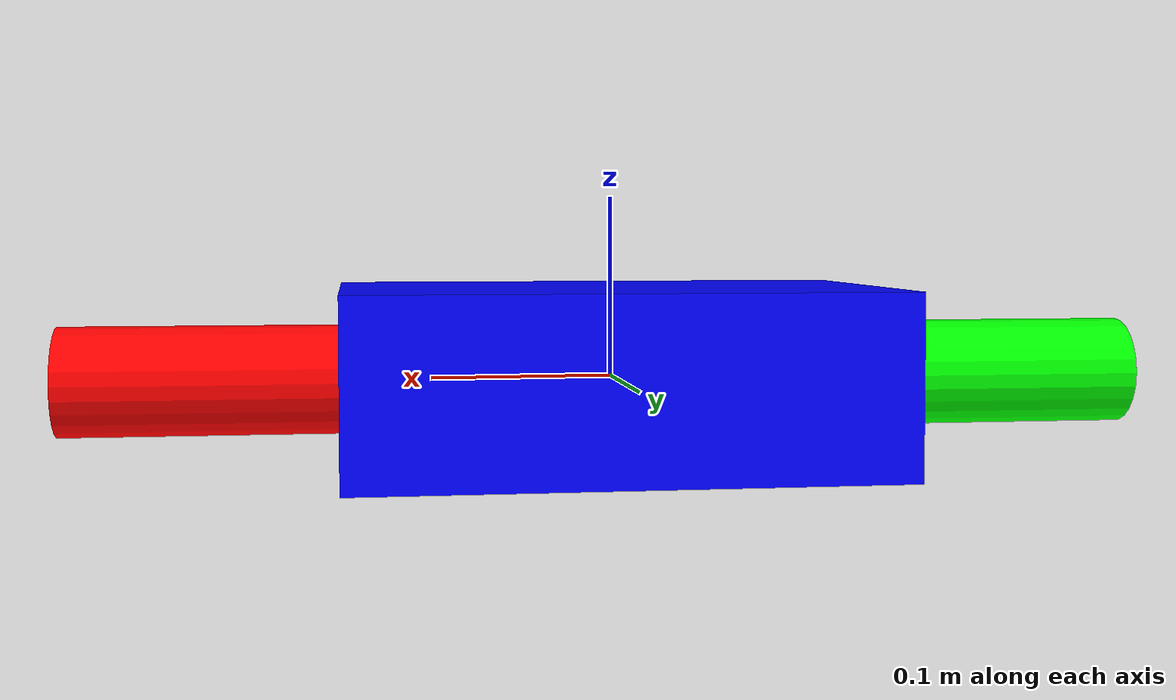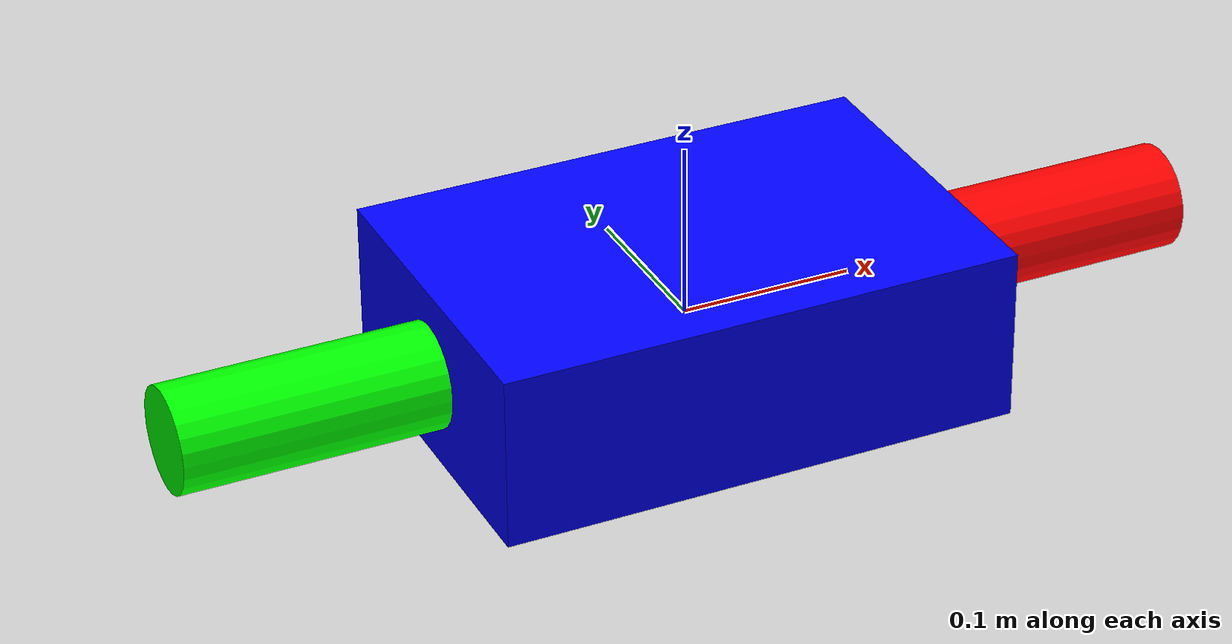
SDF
<?xml version="1.0" ?>
<sdf version="1.6">
  <model name="test_simple">
    <!-- Blue body -->
    <link name="body">
      <pose>0 0 0 0 0 0</pose>
      <inertial>
        <mass>1.0</mass>
        <inertia>
          <ixx>0.1</ixx>
          <iyy>0.1</iyy>
          <izz>0.1</izz>
        </inertia>
      </inertial>
      <visual name="body_visual">
        <geometry>
          <box>
            <size>0.3 0.2 0.1</size>
          </box>
        </geometry>
        <material>
          <ambient>0 0 1 1</ambient>
          <diffuse>0 0 1 1</diffuse>
        </material>
      </visual>
    </link>

    <!-- Red leg extending RIGHT -->
    <link name="red_leg">
      <pose>0 0 0 0 0 0</pose>
      <inertial>
        <mass>0.1</mass>
        <inertia>
          <ixx>0.01</ixx>
          <iyy>0.01</iyy>
          <izz>0.01</izz>
        </inertia>
      </inertial>
      <visual name="red_visual">
        <pose>0.15 0 0 0 1.5708 0</pose>  <!-- 15cm to the right, horizontal -->
        <geometry>
          <cylinder>
            <radius>0.03</radius>
            <length>0.3</length>
          </cylinder>
        </geometry>
        <material>
          <ambient>1 0 0 1</ambient>
          <diffuse>1 0 0 1</diffuse>
        </material>
      </visual>
    </link>

    <joint name="red_joint" type="fixed">
      <parent>body</parent>
      <child>red_leg</child>
      <pose>0 -0.12 0 0 0 0</pose>  <!-- Attached to RIGHT side of body -->
    </joint>

    <!-- Green leg extending LEFT -->
    <link name="green_leg">
      <pose>0 0 0 0 0 0</pose>
      <inertial>
        <mass>0.1</mass>
        <inertia>
          <ixx>0.01</ixx>
          <iyy>0.01</iyy>
          <izz>0.01</izz>
        </inertia>
      </inertial>
      <visual name="green_visual">
        <pose>-0.15 0 0 0 1.5708 0</pose>  <!-- 15cm to the left, horizontal -->
        <geometry>
          <cylinder>
            <radius>0.03</radius>
            <length>0.3</length>
          </cylinder>
        </geometry>
        <material>
          <ambient>0 1 0 1</ambient>
          <diffuse>0 1 0 1</diffuse>
        </material>
      </visual>
    </link>

    <joint name="green_joint" type="fixed">
      <parent>body</parent>
      <child>green_leg</child>
      <pose>0 0.12 0 0 0 0</pose>  <!-- Attached to LEFT side of body -->
    </joint>

  </model>
</sdf>
